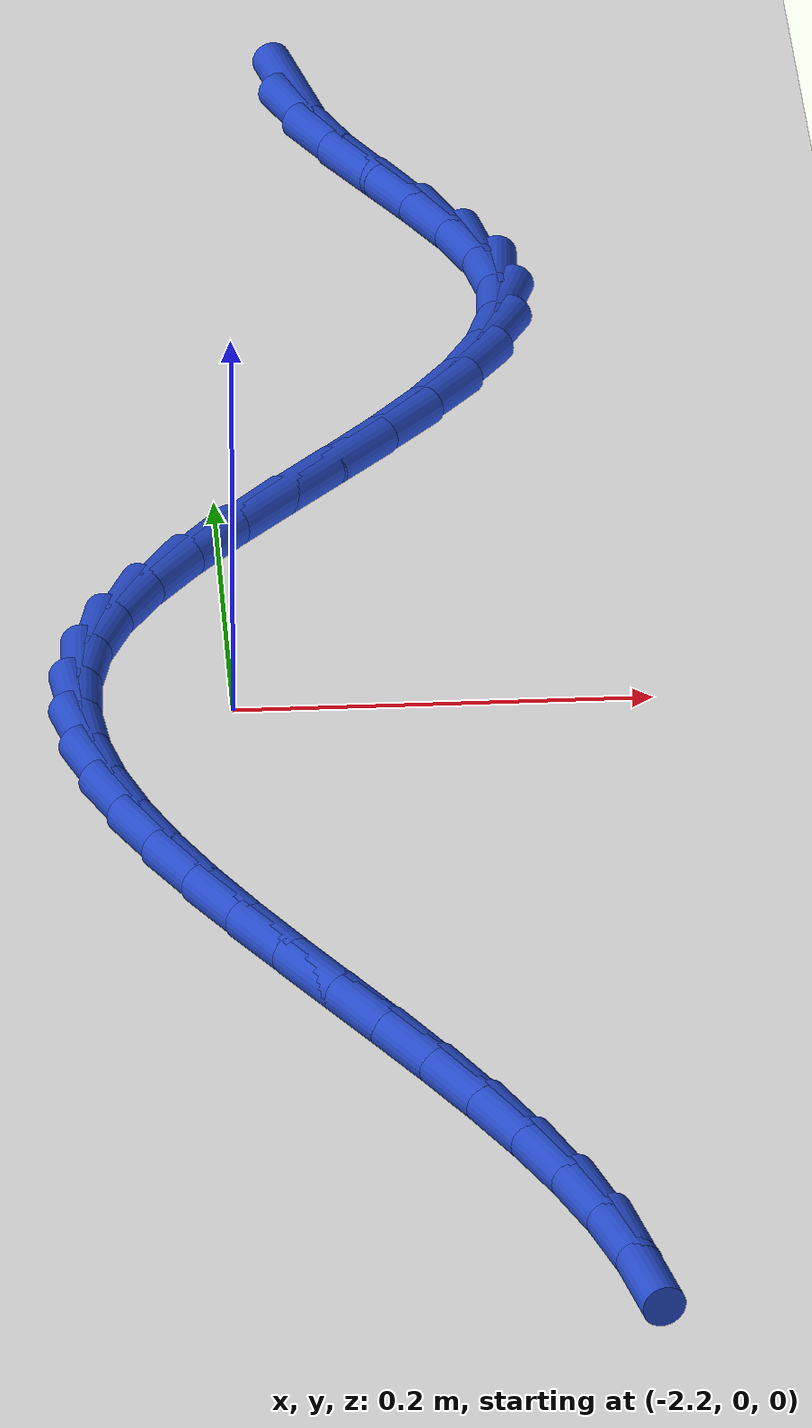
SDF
<sdf version="1.6">
 <world name="default">
  <model name="ground_plane">
   <static>1</static>
   <link name="link">
    <collision name="collision">
     <geometry><plane><normal>0 0 1</normal><size>100 100</size></plane></geometry>
     <surface><friction><ode><mu>100</mu><mu2>50</mu2></ode></friction></surface>
    </collision>
    <visual name="visual">
     <cast_shadows>0</cast_shadows>
     <geometry><plane><normal>0 0 1</normal><size>100 100</size></plane></geometry>
     <material>
      <script><uri>file://media/materials/scripts/gazebo.material</uri><name>Gazebo/WhiteGlow</name></script>
     </material>
    </visual>
   </link>
  </model>
  <model name="line">
   <link name="link_93">
    <pose>-2.139641643811579 0.6108107907328157 0.01 0 1.57 -1.346734347371705</pose>
    <collision name="collision">
     <geometry><cylinder><radius>0.01</radius><length>0.08</length></cylinder></geometry>
    </collision>
    <visual name="visual">
     <material>
      <script><name>Gazebo/Blue</name><uri>file://media/materials/scripts/gazebo.material</uri></script>
     </material>
     <geometry><cylinder><radius>0.01</radius><length>0.08</length></cylinder></geometry>
    </visual>
   </link>
   <link name="link_94">
    <pose>-2.132284162121867 0.5785253347191577 0.01 0 1.57 -1.1706953274929024</pose>
    <collision name="collision">
     <geometry><cylinder><radius>0.01</radius><length>0.08</length></cylinder></geometry>
    </collision>
    <visual name="visual">
     <material>
      <script><name>Gazebo/Blue</name><uri>file://media/materials/scripts/gazebo.material</uri></script>
     </material>
     <geometry><cylinder><radius>0.01</radius><length>0.08</length></cylinder></geometry>
    </visual>
   </link>
   <link name="link_95">
    <pose>-2.1187363987399475 0.5464908819178498 0.01 0 1.57 -1.0752447110821939</pose>
    <collision name="collision">
     <geometry><cylinder><radius>0.01</radius><length>0.08</length></cylinder></geometry>
    </collision>
    <visual name="visual">
     <material>
      <script><name>Gazebo/Blue</name><uri>file://media/materials/scripts/gazebo.material</uri></script>
     </material>
     <geometry><cylinder><radius>0.01</radius><length>0.08</length></cylinder></geometry>
    </visual>
   </link>
   <link name="link_96">
    <pose>-2.1015746703369684 0.5147416799874882 0.01 0 1.57 -1.0459495813716468</pose>
    <collision name="collision">
     <geometry><cylinder><radius>0.01</radius><length>0.08</length></cylinder></geometry>
    </collision>
    <visual name="visual">
     <material>
      <script><name>Gazebo/Blue</name><uri>file://media/materials/scripts/gazebo.material</uri></script>
     </material>
     <geometry><cylinder><radius>0.01</radius><length>0.08</length></cylinder></geometry>
    </visual>
   </link>
   <link name="link_97">
    <pose>-2.083376316254017 0.4833118541956559 0.01 0 1.57 -1.078746913650259</pose>
    <collision name="collision">
     <geometry><cylinder><radius>0.01</radius><length>0.08</length></cylinder></geometry>
    </collision>
    <visual name="visual">
     <material>
      <script><name>Gazebo/Blue</name><uri>file://media/materials/scripts/gazebo.material</uri></script>
     </material>
     <geometry><cylinder><radius>0.01</radius><length>0.08</length></cylinder></geometry>
    </visual>
   </link>
   <link name="link_98">
    <pose>-2.0667186758321807 0.452235529809936 0.01 0 1.57 -1.1828930311923374</pose>
    <collision name="collision">
     <geometry><cylinder><radius>0.01</radius><length>0.08</length></cylinder></geometry>
    </collision>
    <visual name="visual">
     <material>
      <script><name>Gazebo/Blue</name><uri>file://media/materials/scripts/gazebo.material</uri></script>
     </material>
     <geometry><cylinder><radius>0.01</radius><length>0.08</length></cylinder></geometry>
    </visual>
   </link>
   <link name="link_99">
    <pose>-2.054179088412547 0.42154683209791277 0.01 0 1.57 -1.3796131506686444</pose>
    <collision name="collision">
     <geometry><cylinder><radius>0.01</radius><length>0.08</length></cylinder></geometry>
    </collision>
    <visual name="visual">
     <material>
      <script><name>Gazebo/Blue</name><uri>file://media/materials/scripts/gazebo.material</uri></script>
     </material>
     <geometry><cylinder><radius>0.01</radius><length>0.08</length></cylinder></geometry>
    </visual>
   </link>
   <link name="link_100">
    <pose>-2.0483209366048793 0.39127950619551927 0.01 0 1.57 1.5001135467842754</pose>
    <collision name="collision">
     <geometry><cylinder><radius>0.01</radius><length>0.08</length></cylinder></geometry>
    </collision>
    <visual name="visual">
     <material>
      <script><name>Gazebo/Blue</name><uri>file://media/materials/scripts/gazebo.material</uri></script>
     </material>
     <geometry><cylinder><radius>0.01</radius><length>0.08</length></cylinder></geometry>
    </visual>
   </link>
   <link name="link_101">
    <pose>-2.050434118421302 0.36143261205418964 0.01 0 1.57 1.2715462661811854</pose>
    <collision name="collision">
     <geometry><cylinder><radius>0.01</radius><length>0.08</length></cylinder></geometry>
    </collision>
    <visual name="visual">
     <material>
      <script><name>Gazebo/Blue</name><uri>file://media/materials/scripts/gazebo.material</uri></script>
     </material>
     <geometry><cylinder><radius>0.01</radius><length>0.08</length></cylinder></geometry>
    </visual>
   </link>
   <link name="link_102">
    <pose>-2.0595320348695165 0.33194320595545873 0.01 0 1.57 1.1000681692464156</pose>
    <collision name="collision">
     <geometry><cylinder><radius>0.01</radius><length>0.08</length></cylinder></geometry>
    </collision>
    <visual name="visual">
     <material>
      <script><name>Gazebo/Blue</name><uri>file://media/materials/scripts/gazebo.material</uri></script>
     </material>
     <geometry><cylinder><radius>0.01</radius><length>0.08</length></cylinder></geometry>
    </visual>
   </link>
   <link name="link_103">
    <pose>-2.0743920541367236 0.30274191548754104 0.01 0 1.57 0.9809378001997049</pose>
    <collision name="collision">
     <geometry><cylinder><radius>0.01</radius><length>0.08</length></cylinder></geometry>
    </collision>
    <visual name="visual">
     <material>
      <script><name>Gazebo/Blue</name><uri>file://media/materials/scripts/gazebo.material</uri></script>
     </material>
     <geometry><cylinder><radius>0.01</radius><length>0.08</length></cylinder></geometry>
    </visual>
   </link>
   <link name="link_104">
    <pose>-2.0937915444101263 0.2737593682386502 0.01 0 1.57 0.9035055700542058</pose>
    <collision name="collision">
     <geometry><cylinder><radius>0.01</radius><length>0.08</length></cylinder></geometry>
    </collision>
    <visual name="visual">
     <material>
      <script><name>Gazebo/Blue</name><uri>file://media/materials/scripts/gazebo.material</uri></script>
     </material>
     <geometry><cylinder><radius>0.01</radius><length>0.08</length></cylinder></geometry>
    </visual>
   </link>
   <link name="link_105">
    <pose>-2.1165078738769263 0.24492619179700145 0.01 0 1.57 0.8588722297505141</pose>
    <collision name="collision">
     <geometry><cylinder><radius>0.01</radius><length>0.08</length></cylinder></geometry>
    </collision>
    <visual name="visual">
     <material>
      <script><name>Gazebo/Blue</name><uri>file://media/materials/scripts/gazebo.material</uri></script>
     </material>
     <geometry><cylinder><radius>0.01</radius><length>0.08</length></cylinder></geometry>
    </visual>
   </link>
   <link name="link_106">
    <pose>-2.141318410724327 0.21617301375080805 0.01 0 1.57 0.8415715909017297</pose>
    <collision name="collision">
     <geometry><cylinder><radius>0.01</radius><length>0.08</length></cylinder></geometry>
    </collision>
    <visual name="visual">
     <material>
      <script><name>Gazebo/Blue</name><uri>file://media/materials/scripts/gazebo.material</uri></script>
     </material>
     <geometry><cylinder><radius>0.01</radius><length>0.08</length></cylinder></geometry>
    </visual>
   </link>
   <link name="link_107">
    <pose>-2.1670005231395306 0.18743046168828503 0.01 0 1.57 0.8494171810909352</pose>
    <collision name="collision">
     <geometry><cylinder><radius>0.01</radius><length>0.08</length></cylinder></geometry>
    </collision>
    <visual name="visual">
     <material>
      <script><name>Gazebo/Blue</name><uri>file://media/materials/scripts/gazebo.material</uri></script>
     </material>
     <geometry><cylinder><radius>0.01</radius><length>0.08</length></cylinder></geometry>
    </visual>
   </link>
   <link name="link_108">
    <pose>-2.1923315793097395 0.15862916319764603 0.01 0 1.57 0.8832506133958559</pose>
    <collision name="collision">
     <geometry><cylinder><radius>0.01</radius><length>0.08</length></cylinder></geometry>
    </collision>
    <visual name="visual">
     <material>
      <script><name>Gazebo/Blue</name><uri>file://media/materials/scripts/gazebo.material</uri></script>
     </material>
     <geometry><cylinder><radius>0.01</radius><length>0.08</length></cylinder></geometry>
    </visual>
   </link>
   <link name="link_109">
    <pose>-2.216088947422156 0.12969974586710592 0.01 0 1.57 0.9470067926473229</pose>
    <collision name="collision">
     <geometry><cylinder><radius>0.01</radius><length>0.08</length></cylinder></geometry>
    </collision>
    <visual name="visual">
     <material>
      <script><name>Gazebo/Blue</name><uri>file://media/materials/scripts/gazebo.material</uri></script>
     </material>
     <geometry><cylinder><radius>0.01</radius><length>0.08</length></cylinder></geometry>
    </visual>
   </link>
   <link name="link_110">
    <pose>-2.2370499956639827 0.10057283728487829 0.01 0 1.57 1.047922644759453</pose>
    <collision name="collision">
     <geometry><cylinder><radius>0.01</radius><length>0.08</length></cylinder></geometry>
    </collision>
    <visual name="visual">
     <material>
      <script><name>Gazebo/Blue</name><uri>file://media/materials/scripts/gazebo.material</uri></script>
     </material>
     <geometry><cylinder><radius>0.01</radius><length>0.08</length></cylinder></geometry>
    </visual>
   </link>
   <link name="link_111">
    <pose>-2.253992092222421 0.07117906503917809 0.01 0 1.57 1.1947114491195927</pose>
    <collision name="collision">
     <geometry><cylinder><radius>0.01</radius><length>0.08</length></cylinder></geometry>
    </collision>
    <visual name="visual">
     <material>
      <script><name>Gazebo/Blue</name><uri>file://media/materials/scripts/gazebo.material</uri></script>
     </material>
     <geometry><cylinder><radius>0.01</radius><length>0.08</length></cylinder></geometry>
    </visual>
   </link>
   <link name="link_112">
    <pose>-2.265731113459261 0.04145099882153578 0.01 0 1.57 1.3675122147352388</pose>
    <collision name="collision">
     <geometry><cylinder><radius>0.01</radius><length>0.08</length></cylinder></geometry>
    </collision>
    <visual name="visual">
     <material>
      <script><name>Gazebo/Blue</name><uri>file://media/materials/scripts/gazebo.material</uri></script>
     </material>
     <geometry><cylinder><radius>0.01</radius><length>0.08</length></cylinder></geometry>
    </visual>
   </link>
   <link name="link_113">
    <pose>-2.271932972018227 0.011364078656862493 0.01 0 1.57 1.532649960280038</pose>
    <collision name="collision">
     <geometry><cylinder><radius>0.01</radius><length>0.08</length></cylinder></geometry>
    </collision>
    <visual name="visual">
     <material>
      <script><name>Gazebo/Blue</name><uri>file://media/materials/scripts/gazebo.material</uri></script>
     </material>
     <geometry><cylinder><radius>0.01</radius><length>0.08</length></cylinder></geometry>
    </visual>
   </link>
   <link name="link_114">
    <pose>-2.2730942697639382 -0.019064360837204166 0.01 0 1.57 -1.4623478005615613</pose>
    <collision name="collision">
     <geometry><cylinder><radius>0.01</radius><length>0.08</length></cylinder></geometry>
    </collision>
    <visual name="visual">
     <material>
      <script><name>Gazebo/Blue</name><uri>file://media/materials/scripts/gazebo.material</uri></script>
     </material>
     <geometry><cylinder><radius>0.01</radius><length>0.08</length></cylinder></geometry>
    </visual>
   </link>
   <link name="link_115">
    <pose>-2.269746246680412 -0.04981523812026633 0.01 0 1.57 -1.339119124874484</pose>
    <collision name="collision">
     <geometry><cylinder><radius>0.01</radius><length>0.08</length></cylinder></geometry>
    </collision>
    <visual name="visual">
     <material>
      <script><name>Gazebo/Blue</name><uri>file://media/materials/scripts/gazebo.material</uri></script>
     </material>
     <geometry><cylinder><radius>0.01</radius><length>0.08</length></cylinder></geometry>
    </visual>
   </link>
   <link name="link_116">
    <pose>-2.26242014275166 -0.08086947165192829 0.01 0 1.57 -1.2396907590434736</pose>
    <collision name="collision">
     <geometry><cylinder><radius>0.01</radius><length>0.08</length></cylinder></geometry>
    </collision>
    <visual name="visual">
     <material>
      <script><name>Gazebo/Blue</name><uri>file://media/materials/scripts/gazebo.material</uri></script>
     </material>
     <geometry><cylinder><radius>0.01</radius><length>0.08</length></cylinder></geometry>
    </visual>
   </link>
   <link name="link_117">
    <pose>-2.2516471979616983 -0.1122079798917936 0.01 0 1.57 -1.1620587799954392</pose>
    <collision name="collision">
     <geometry><cylinder><radius>0.01</radius><length>0.08</length></cylinder></geometry>
    </collision>
    <visual name="visual">
     <material>
      <script><name>Gazebo/Blue</name><uri>file://media/materials/scripts/gazebo.material</uri></script>
     </material>
     <geometry><cylinder><radius>0.01</radius><length>0.08</length></cylinder></geometry>
    </visual>
   </link>
   <link name="link_118">
    <pose>-2.2379586522945414 -0.14381168129946664 0.01 0 1.57 -1.1034381833860611</pose>
    <collision name="collision">
     <geometry><cylinder><radius>0.01</radius><length>0.08</length></cylinder></geometry>
    </collision>
    <visual name="visual">
     <material>
      <script><name>Gazebo/Blue</name><uri>file://media/materials/scripts/gazebo.material</uri></script>
     </material>
     <geometry><cylinder><radius>0.01</radius><length>0.08</length></cylinder></geometry>
    </visual>
   </link>
   <link name="link_119">
    <pose>-2.221885745734204 -0.1756614943345494 0.01 0 1.57 -1.0611866538542376</pose>
    <collision name="collision">
     <geometry><cylinder><radius>0.01</radius><length>0.08</length></cylinder></geometry>
    </collision>
    <visual name="visual">
     <material>
      <script><name>Gazebo/Blue</name><uri>file://media/materials/scripts/gazebo.material</uri></script>
     </material>
     <geometry><cylinder><radius>0.01</radius><length>0.08</length></cylinder></geometry>
    </visual>
   </link>
   <link name="link_120">
    <pose>-2.203959718264701 -0.20773833745664622 0.01 0 1.57 -1.0331821279726132</pose>
    <collision name="collision">
     <geometry><cylinder><radius>0.01</radius><length>0.08</length></cylinder></geometry>
    </collision>
    <visual name="visual">
     <material>
      <script><name>Gazebo/Blue</name><uri>file://media/materials/scripts/gazebo.material</uri></script>
     </material>
     <geometry><cylinder><radius>0.01</radius><length>0.08</length></cylinder></geometry>
    </visual>
   </link>
   <link name="link_121">
    <pose>-2.184711809870047 -0.24002312912536083 0.01 0 1.57 -1.0179191756533257</pose>
    <collision name="collision">
     <geometry><cylinder><radius>0.01</radius><length>0.08</length></cylinder></geometry>
    </collision>
    <visual name="visual">
     <material>
      <script><name>Gazebo/Blue</name><uri>file://media/materials/scripts/gazebo.material</uri></script>
     </material>
     <geometry><cylinder><radius>0.01</radius><length>0.08</length></cylinder></geometry>
    </visual>
   </link>
   <link name="link_122">
    <pose>-2.164673260534255 -0.27249678780029735 0.01 0 1.57 -1.0144957735521445</pose>
    <collision name="collision">
     <geometry><cylinder><radius>0.01</radius><length>0.08</length></cylinder></geometry>
    </collision>
    <visual name="visual">
     <material>
      <script><name>Gazebo/Blue</name><uri>file://media/materials/scripts/gazebo.material</uri></script>
     </material>
     <geometry><cylinder><radius>0.01</radius><length>0.08</length></cylinder></geometry>
    </visual>
   </link>
   <link name="link_123">
    <pose>-2.144375310241342 -0.30514023194105794 0.01 0 1.57 -1.0225746221794165</pose>
    <collision name="collision">
     <geometry><cylinder><radius>0.01</radius><length>0.08</length></cylinder></geometry>
    </collision>
    <visual name="visual">
     <material>
      <script><name>Gazebo/Blue</name><uri>file://media/materials/scripts/gazebo.material</uri></script>
     </material>
     <geometry><cylinder><radius>0.01</radius><length>0.08</length></cylinder></geometry>
    </visual>
   </link>
   <link name="link_124">
    <pose>-2.124349198975321 -0.33793438000724685 0.01 0 1.57 -1.0423518485018257</pose>
    <collision name="collision">
     <geometry><cylinder><radius>0.01</radius><length>0.08</length></cylinder></geometry>
    </collision>
    <visual name="visual">
     <material>
      <script><name>Gazebo/Blue</name><uri>file://media/materials/scripts/gazebo.material</uri></script>
     </material>
     <geometry><cylinder><radius>0.01</radius><length>0.08</length></cylinder></geometry>
    </visual>
   </link>
   <link name="link_125">
    <pose>-2.1051261667202086 -0.37086015045846776 0.01 0 1.57 -1.0745383058035238</pose>
    <collision name="collision">
     <geometry><cylinder><radius>0.01</radius><length>0.08</length></cylinder></geometry>
    </collision>
    <visual name="visual">
     <material>
      <script><name>Gazebo/Blue</name><uri>file://media/materials/scripts/gazebo.material</uri></script>
     </material>
     <geometry><cylinder><radius>0.01</radius><length>0.08</length></cylinder></geometry>
    </visual>
   </link>
   <link name="link_126">
    <pose>-2.087237453460017 -0.4038984617543251 0.01 0 1.57 -1.120339174380017</pose>
    <collision name="collision">
     <geometry><cylinder><radius>0.01</radius><length>0.08</length></cylinder></geometry>
    </collision>
    <visual name="visual">
     <material>
      <script><name>Gazebo/Blue</name><uri>file://media/materials/scripts/gazebo.material</uri></script>
     </material>
     <geometry><cylinder><radius>0.01</radius><length>0.08</length></cylinder></geometry>
    </visual>
   </link>
   <link name="link_127">
    <pose>-2.0712142991787625 -0.43703023235442057 0.01 0 1.57 -1.1813940277443256</pose>
    <collision name="collision">
     <geometry><cylinder><radius>0.01</radius><length>0.08</length></cylinder></geometry>
    </collision>
    <visual name="visual">
     <material>
      <script><name>Gazebo/Blue</name><uri>file://media/materials/scripts/gazebo.material</uri></script>
     </material>
     <geometry><cylinder><radius>0.01</radius><length>0.08</length></cylinder></geometry>
    </visual>
   </link>
   <link name="link_128">
    <pose>-2.057587943860459 -0.4702363807183587 0.01 0 1.57 -1.2593542146350596</pose>
    <collision name="collision">
     <geometry><cylinder><radius>0.01</radius><length>0.08</length></cylinder></geometry>
    </collision>
    <visual name="visual">
     <material>
      <script><name>Gazebo/Blue</name><uri>file://media/materials/scripts/gazebo.material</uri></script>
     </material>
     <geometry><cylinder><radius>0.01</radius><length>0.08</length></cylinder></geometry>
    </visual>
   </link>
   <link name="link_129">
    <pose>-2.046880374263239 -0.5034981389602302 0.01 0 1.57 -1.342820426873955</pose>
    <collision name="collision">
     <geometry><cylinder><radius>0.01</radius><length>0.08</length></cylinder></geometry>
    </collision>
    <visual name="visual">
     <material>
      <script><name>Gazebo/Blue</name><uri>file://media/materials/scripts/gazebo.material</uri></script>
     </material>
     <geometry><cylinder><radius>0.01</radius><length>0.08</length></cylinder></geometry>
    </visual>
   </link>
  </model>
 </world>
</sdf>
